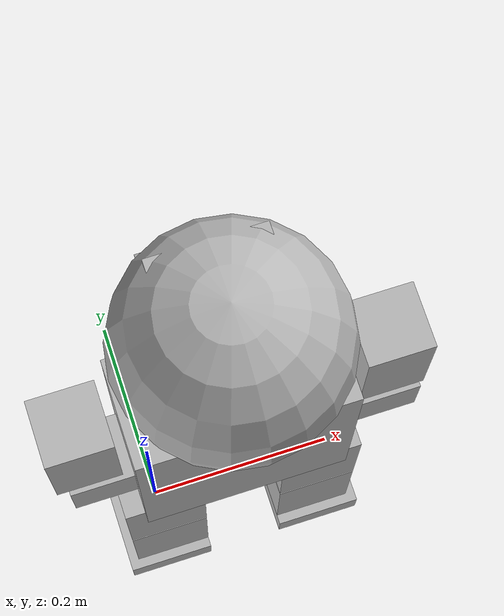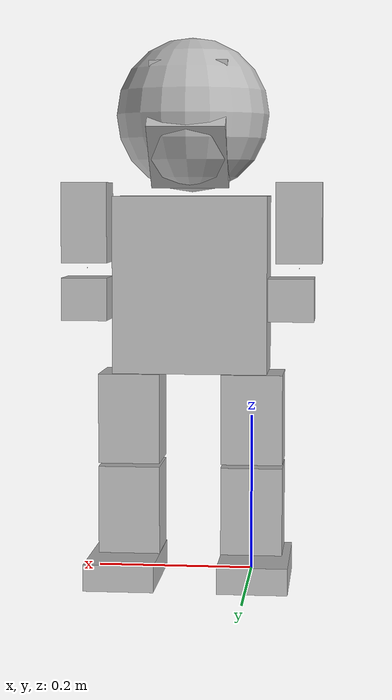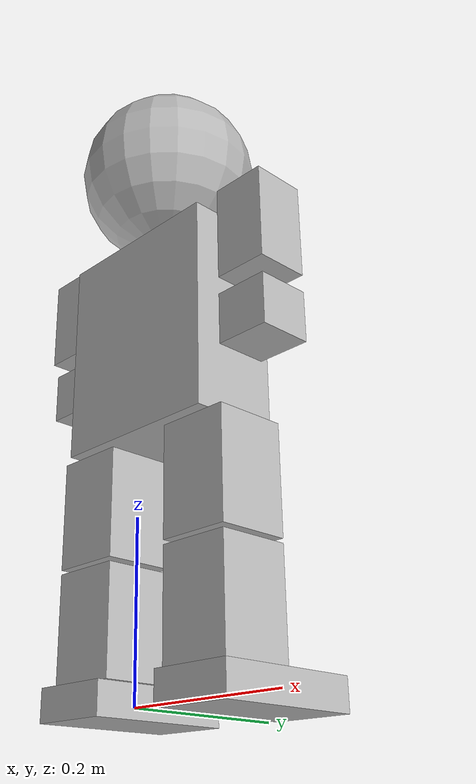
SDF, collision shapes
<?xml version='1.0'?>
<sdf version='1.3'>
    <model name="nao_robot">
        <!-- LEFT LEG -->
        <link name="left_foot">
            <pose>-0.005 0 0 0 0 0</pose>
            <inertial>
                <mass>1.6184</mass>
            </inertial>

            <collision name="collision">
                <geometry>
                    <box>
                        <size>.09 .16 .03419</size>
                    </box>
                </geometry>
            </collision>
            <visual name="visual">
                <pose>0 0 0 -1.57 0 0</pose>
                <geometry>
                    <mesh>
                        <uri>model://nao_robot/meshes/pieizquierdo.dae</uri>
                        <scale>0.09 0.09 0.075</scale>
                    </mesh>
                </geometry>
            </visual>
        </link>

        <link name="leftankle_pitch">
            <pose>-0.005 0 0.03 0 0 0</pose>
            <inertial>
                <mass>0.01</mass>
            </inertial>

            <collision name="collision">
                <geometry>
                    <box>
                        <size>.001 .001 .001</size>
                    </box>
                </geometry>
            </collision>

            <visual name="visual">
                <geometry>
                    <box>
                        <size>.001 .001 .001</size>
                    </box>
                </geometry>
            </visual>

        </link>

        <link name="left_shin">
            <pose>0 -0.03 .075 0 0 0</pose>
            <inertial>
                <mass>0.29142</mass>
            </inertial>

            <collision name="collision">
                <geometry>
                    <box>
                        <size>.08 .08 .1139</size>
                    </box>
                </geometry>
            </collision>
            <visual name="visual">
                <pose>0 0 0 -1.57 0 0</pose>
                <geometry>
                    <mesh>
                        <uri>model://nao_robot/meshes/espinillaizquierda.dae</uri>
                        <scale>0.075 0.075 0.075</scale>
                    </mesh>
                </geometry>
            </visual>
        </link>

        <link name="left_thigh">
            <pose>0 -0.03 .195 0 0 0</pose>
            <inertial>
                <mass>0.38968</mass>
            </inertial>

            <collision name="collision">
                <geometry>
                    <box>
                        <size>.08 .08 .117</size>
                    </box>
                </geometry>
            </collision>
            <visual name="visual">
                <pose>0 0 0 -1.57 0 0</pose>
                <geometry>
                    <mesh>
                        <uri>model://nao_robot/meshes/musloizquierdo.dae</uri>
                        <scale>0.075 0.075 0.075</scale>
                    </mesh>
                </geometry>
            </visual>
        </link>

        <!-- RIGHT LEG -->
        <link name="right_foot">
            <pose>0.165 0 0 0 0 0</pose>
            <inertial>
                <mass>1.6171</mass>
            </inertial>

            <collision name="collision">
                <geometry>
                    <box>
                        <size>.09 .16 .03419</size>
                    </box>
                </geometry>
            </collision>
            <visual name="visual">
                <pose>0 0 0 -1.57 0 0</pose>
                <geometry>
                    <mesh>
                        <uri>model://nao_robot/meshes/piederecho.dae</uri>
                        <scale>0.09 0.09 0.075</scale>
                    </mesh>
                </geometry>
            </visual>
        </link>

        <link name="rightankle_pitch">
            <pose>0.165 0 0.03 0 0 0</pose>
            <inertial>
                <mass>0.01</mass>
            </inertial>

            <collision name="collision">
                <geometry>
                    <box>
                        <size>.001 .001 .001</size>
                    </box>
                </geometry>
            </collision>

            <visual name="visual">
                <geometry>
                    <box>
                        <size>.001 .001 .001</size>
                    </box>
                </geometry>
            </visual>

        </link>

        <link name="right_shin">
            <pose>0.16 -0.03 .075 0 0 0</pose>
            <inertial>
                <mass>0.29163</mass>
            </inertial>

            <collision name="collision">
                <geometry>
                    <box>
                        <size>.08 .08 .1139</size>
                    </box>
                </geometry>
            </collision>
            <visual name="visual">
                <pose>0 0 0 -1.57 0 0</pose>
                <geometry>
                    <mesh>
                        <uri>model://nao_robot/meshes/espinilladerecha.dae</uri>
                        <scale>0.075 0.075 0.075</scale>
                    </mesh>
                </geometry>
            </visual>
        </link>

        <link name="righthip_yawpitch">
            <pose>0.16 -0.03 0.27 0 0 0</pose>
            <inertial>
                <mass>0.01</mass>
            </inertial>

            <collision name="collision">
                <geometry>
                    <box>
                        <size>.001 .001 .001</size>
                    </box>
                </geometry>
            </collision>

            <visual name="visual">
                <geometry>
                    <box>
                        <size>.001 .001 .001</size>
                    </box>
                </geometry>
            </visual>

        </link>

        <link name="righthip_roll">
            <pose>0.16 -0.03 0.27 0 0 0</pose>
            <inertial>
                <mass>0.01</mass>
            </inertial>

            <collision name="collision">
                <geometry>
                    <box>
                        <size>.001 .001 .001</size>
                    </box>
                </geometry>
            </collision>

            <visual name="visual">
                <geometry>
                    <box>
                        <size>.001 .001 .001</size>
                    </box>
                </geometry>
            </visual>

        </link>

        <link name="right_thigh">
            <pose>0.16 -0.03 .195 0 0 0</pose>
            <inertial>
                <mass>0.38976</mass>
            </inertial>

            <collision name="collision">
                <geometry>
                    <box>
                        <size>.08 .08 .117</size>
                    </box>
                </geometry>
            </collision>
            <visual name="visual">
                <pose>0 0 0 -1.57 0 0</pose>
                <geometry>
                    <mesh>
                        <uri>model://nao_robot/meshes/musloderecho.dae</uri>
                        <scale>0.075 0.075 0.075</scale>
                    </mesh>
                </geometry>
            </visual>
        </link>

        <link name="body_hexa">
            <pose>0.08 -0.03 0.37 0 0 0</pose>
            <inertial>
                <mass>1.04956</mass>
            </inertial>

            <collision name="collision">
                <geometry>
                    <box>
                        <size>.2 .1 .2295</size>
                    </box>
                </geometry>
            </collision>
            <visual name="visual">
                <pose>0 0 0 0 0 3.14</pose>
                <geometry>
                    <mesh>
                        <uri>model://nao_robot/meshes/cuerpo.dae</uri>
                        <scale>0.14 0.14 0.14</scale>
                    </mesh>
                </geometry>
            </visual>
        </link>

        <!-- LEFT ARM -->
        <link name="leftshoulder_pitch">
            <pose>-0.06 -0.03 0.49 0 0 0</pose>
            <inertial>
                <mass>0.01</mass>
            </inertial>

            <collision name="collision">
                <geometry>
                    <box>
                        <size>.001 .001 .001</size>
                    </box>
                </geometry>
            </collision>

            <visual name="visual">
                <geometry>
                    <box>
                        <size>.001 .001 .001</size>
                    </box>
                </geometry>
            </visual>

        </link>

        <link name="left_upper_arm">
            <pose>-0.06 -0.03 0.45 0 0 0</pose>
            <inertial>
                <mass>0.15777</mass>
            </inertial>

            <collision name="collision">
                <geometry>
                    <box>
                        <size>.06 .06 .105</size>
                    </box>
                </geometry>
            </collision>
            <visual name="visual">
                <pose>0 0 0 0 3.14 3.14</pose>
                <geometry>
                    <mesh>
                        <uri>model://nao_robot/meshes/bicepsizquierdo.dae</uri>
                        <scale>0.11 0.11 0.11</scale>
                    </mesh>
                </geometry>
            </visual>
        </link>

        <link name="leftelbow_yaw">
            <pose>-0.06 -0.03 0.39 0 0 0</pose>
            <inertial>
                <mass>0.01</mass>
            </inertial>

            <collision name="collision">
                <geometry>
                    <box>
                        <size>.001 .001 .001</size>
                    </box>
                </geometry>
            </collision>

            <visual name="visual">
                <geometry>
                    <box>
                        <size>.001 .001 .001</size>
                    </box>
                </geometry>
            </visual>

        </link>

        <link name="left_lower_arm">
            <pose>-0.05 -0.03 0.35 0 0 0</pose>
            <inertial>
                <mass>0.07761</mass>
            </inertial>

            <collision name="collision">
                <geometry>
                    <box>
                        <size>.06 .06 .05595</size>
                    </box>
                </geometry>
            </collision>
            <visual name="visual">
                <pose>0 0 0 0 3.14 -1.57</pose>
                <geometry>
                    <mesh>
                        <uri>model://nao_robot/meshes/antebrazoizquierdo.dae</uri>
                        <scale>0.11 0.11 0.11</scale>
                    </mesh>
                </geometry>
            </visual>
        </link>
        <!-- RIGHT ARM -->
        <link name="rightshoulder_pitch">
            <pose>0.2 -0.03 0.49 0 0 0</pose>
            <inertial>
                <mass>0.01</mass>
            </inertial>

            <collision name="collision">
                <geometry>
                    <box>
                        <size>.001 .001 .001</size>
                    </box>
                </geometry>
            </collision>

            <visual name="visual">
                <geometry>
                    <box>
                        <size>.001 .001 .001</size>
                    </box>
                </geometry>
            </visual>

        </link>

        <link name="right_upper_arm">
            <pose>0.22 -0.03 0.45 0 0 0</pose>
            <inertial>
                <mass>0.15794</mass>
            </inertial>

            <collision name="collision">
                <geometry>
                    <box>
                        <size>.06 .06 .105</size>
                    </box>
                </geometry>
            </collision>
            <visual name="visual">
                <pose>0 0 0 0 3.14 0</pose>
                <geometry>
                    <mesh>
                        <uri>model://nao_robot/meshes/bicepsderecho.dae</uri>
                        <scale>0.11 0.11 0.11</scale>
                    </mesh>
                </geometry>
            </visual>
        </link>

        <link name="rightelbow_yaw">
            <pose>0.22 -0.03 0.39 0 0 0</pose>
            <inertial>
                <mass>0.01</mass>
            </inertial>

            <collision name="collision">
                <geometry>
                    <box>
                        <size>.001 .001 .001</size>
                    </box>
                </geometry>
            </collision>

            <visual name="visual">
                <geometry>
                    <box>
                        <size>.001 .001 .001</size>
                    </box>
                </geometry>
            </visual>
        </link>

        <link name="right_lower_arm">
            <pose>0.22 -0.03 0.35 0 0 0</pose>
            <inertial>
                <mass>0.07778</mass>
            </inertial>

            <collision name="collision">
                <geometry>
                    <box>
                        <size>.06 .06 .05595</size>
                    </box>
                </geometry>
            </collision>
            <visual name="visual">
                <pose>0 0 0 0 3.14 1.57</pose>
                <geometry>
                    <mesh>
                        <uri>model://nao_robot/meshes/antebrazoderecho.dae</uri>
                        <scale>0.11 0.11 0.11</scale>
                    </mesh>
                </geometry>
            </visual>
        </link>
        <!-- HEAD -->
        <link name="head_pan">
            <pose>0.08 -0.03 0.51 0 0 0</pose>
            <inertial>
                <mass>0.01</mass>
            </inertial>

            <collision name="collision">
                <geometry>
                    <box>
                        <size>.001 .001 .001</size>
                    </box>
                </geometry>
            </collision>

            <visual name="visual">
                <geometry>
                    <box>
                        <size>.001 .001 .001</size>
                    </box>
                </geometry>
            </visual>
        </link>

        <link name="head_tilt">
            <pose>0.08 -0.03 0.59 0 0 0</pose>
            <inertial>
                <mass>0.60533</mass>
            </inertial>

            <collision name="collision">
                <geometry>
                    <sphere>
                        <radius>.1</radius>
                    </sphere>
                </geometry>
            </collision>
            <visual name="visual">
                <pose>0 0 -0.02 0 0 3.14</pose>
                <geometry>
                    <mesh>
                        <uri>model://nao_robot/meshes/cabeza.dae</uri>
                        <scale>0.12 0.12 0.12</scale>
                    </mesh>
                </geometry>
            </visual>
        </link>

        <link name="camera_head_top">
            <pose>0.08 -0.0179 0.608 1.57 -0.0209 -1.57</pose>
            <inertial>
                <mass>0.05</mass>
            </inertial>

            <sensor name='cam_sensor_top' type='camera'>
        	    <pose>0 0 0 1.57 0 3.14</pose>
                <update_rate>20</update_rate>
                <camera>
                    <horizontal_fov>1.57</horizontal_fov>
                    <image>
              	        <width>640</width>
              	        <height>480</height>
              	        <format>R8G8B8</format>
                    </image>
                    <clip>
		                <near>0.5</near>
		                <far>5</far>
                    </clip>
                </camera>
                <plugin name='camera_dump' filename='libcamera_nao.so'/>
            </sensor>

	 	    <visual name="visual">
                <geometry>
                    <mesh>
                        <uri>model://pioneer2dxJde/meshes/sonyvid30/sonyvid30_top.dae</uri>
                        <scale>2 2 1.3</scale>
                    </mesh>
                </geometry>
            </visual>

            <collision name="collision">
                <geometry>
                    <box>
                        <size>0.1 0.1 0.1</size>
                    </box>
                </geometry>
                <surface>
                    <friction>
                        <ode>
                            <mu>100000.0</mu>
                            <mu2>100000.0</mu2>
                            <slip1>0.0</slip1>
                            <slip2>0.0</slip2>
                        </ode>
                    </friction>
                </surface>
            </collision>
        </link>

        <link name="camera_head_bottom">
            <pose>0.08 -0.001 0.5653 1.57 -0.6929 -1.57</pose>
            <inertial>
                <mass>0.05</mass>
            </inertial>

            <sensor name='cam_sensor_bottom' type='camera'>
        	    <pose>0 0 0 1.57 0 3.14</pose>
                <update_rate>20</update_rate>
                <camera>
                    <horizontal_fov>1.57</horizontal_fov>
                    <image>
              	        <width>640</width>
              	        <height>480</height>
              	        <format>R8G8B8</format>
                    </image>
                    <clip>
		                <near>0.5</near>
		                <far>5</far>
                    </clip>
                </camera>
                <plugin name='camera_dump' filename='libcamera_nao.so'/>
            </sensor>

	 	    <visual name="visual">
                <geometry>
                    <mesh>
                        <uri>model://pioneer2dxJde/meshes/sonyvid30/sonyvid30_top.dae</uri>
                        <scale>2 2 1.3</scale>
                    </mesh>
                </geometry>
            </visual>

            <collision name="collision">
                <geometry>
                    <box>
                        <size>0.1 0.1 0.1</size>
                    </box>
                </geometry>
                <surface>
                    <friction>
                        <ode>
                            <mu>100000.0</mu>
                            <mu2>100000.0</mu2>
                            <slip1>0.0</slip1>
                            <slip2>0.0</slip2>
                        </ode>
                    </friction>
                </surface>
            </collision>
        </link>

        <!-- JOINTS -->

        <!-- LEFT LEG -->
        <joint type="revolute" name="lankle_pitch">
            <pose>0 0 -0.041 0 0 0</pose>
            <child>left_shin</child>
            <parent>leftankle_pitch</parent>
            <axis>
                <limit>
                    <lower>-1.189516</lower>
                    <upper>0.922747</upper>
                </limit>
                <xyz>1 0 0</xyz>
            </axis>
        </joint>

        <joint type="revolute" name="lankle_roll">
            <pose>0 0 0 0 0 0</pose>
            <child>leftankle_pitch</child>
            <parent>left_foot</parent>
            <axis>
                <limit>
                    <lower>-0.397880</lower>
                    <upper>0.769001</upper>
                </limit>
                <xyz>0 1 0</xyz>
            </axis>
        </joint>

        <joint type="revolute" name="left_knee">
            <pose>0 0 -0.046 0 0 0</pose>
            <child>left_thigh</child>
            <parent>left_shin</parent>
            <axis>
                <limit>
                    <lower>-0.092346</lower>
                    <upper>2.112528</upper>
                </limit>
                <xyz>0 0 1</xyz>
            </axis>
        </joint>

        <!-- RIGHT LEG -->
        <joint type="revolute" name="rankle_pitch">
            <pose>0 0 -0.041 0 0 0</pose>
            <child>right_shin</child>
            <parent>rightankle_pitch</parent>
            <axis>
                <limit>
                    <lower>-1.186448</lower>
                    <upper>0.932056</upper>
                </limit>
                <xyz>1 0 0</xyz>
            </axis>
        </joint>

        <joint type="revolute" name="rankle_roll">
            <pose>0 0 0 0 0 0</pose>
            <child>rightankle_pitch</child>
            <parent>right_foot</parent>
            <axis>
                <limit>
                    <lower>-0.785875</lower>
                    <upper>0.388676</upper>
                </limit>
                <xyz>0 1 0</xyz>
            </axis>
        </joint>

        <joint type="revolute" name="right_knee">
            <pose>0 0 -0.046 0 0 0</pose>
            <child>right_thigh</child>
            <parent>right_shin</parent>
            <axis>
                <limit>
                    <lower>-0.103083</lower>
                    <upper>2.120198</upper>
                </limit>
                <xyz>0 0 1</xyz>
            </axis>
        </joint>

        <!-- HIPS -->
        <joint type="revolute" name="left_hip">
            <pose>-0.08 0 -0.1 0 0 0</pose>
            <child>body_hexa</child>
            <parent>left_shin</parent>
            <axis>
                <limit>
                    <lower>0</lower>
                    <upper>0</upper>
                </limit>
                <xyz>0 0 0</xyz>
            </axis>
        </joint>

        <joint type="revolute" name="rhip_yawpitch">
            <pose>0.08 0 -0.1 0 0 0</pose>
            <child>body_hexa</child>
            <parent>righthip_yawpitch</parent>
            <axis>
                <limit>
                    <lower>0</lower>
                    <upper>0</upper>
                </limit>
                <xyz>0 0 0</xyz>
            </axis>
        </joint>

        <joint type="revolute" name="rhip_roll">
            <pose>0 0 0 0 0 0</pose>
            <child>righthip_yawpitch</child>
            <parent>righthip_roll</parent>
            <axis>
                <limit>
                    <lower>0</lower>
                    <upper>0</upper>
                </limit>
                <xyz>0 0 0</xyz>
            </axis>
        </joint>

        <joint type="revolute" name="rhip_pitch">
            <pose>0 0 0 0 0 0</pose>
            <child>righthip_roll</child>
            <parent>right_thigh</parent>
            <axis>
                <limit>
                    <lower>0</lower>
                    <upper>0</upper>
                </limit>
                <xyz>0 0 0</xyz>
            </axis>
        </joint>

        <!-- BODY -->

        <!-- LEFT ARM -->
        <joint type="revolute" name="lshoulder_pitch">
            <pose>-0.14 0 0.12 0 0 0</pose>
            <child>body_hexa</child>
            <parent>leftshoulder_pitch</parent>
            <axis>
                <limit>
                    <lower>-3.6564734</lower>
                    <upper>0.5148734</upper>
                </limit>
                <xyz>1 0 0</xyz>
            </axis>
        </joint>

        <joint type="revolute" name="lshoulder_roll">
            <pose>0 0 0 0 0 0</pose>
            <child>leftshoulder_pitch</child>
            <parent>left_upper_arm</parent>
            <axis>
                <limit>
                    <lower>-1.3265</lower>
                    <upper>0.3142</upper>
                </limit>
                <xyz>0 1 0</xyz>
            </axis>
        </joint>

        <joint type="revolute" name="lelbow_yaw">
            <pose>0 0 -0.059 0 0 0</pose>
            <child>left_upper_arm</child>
            <parent>leftelbow_yaw</parent>
            <axis>
                <limit>
                    <lower>-2.0857</lower>
                    <upper>2.0857</upper>
                </limit>
                <xyz>0 0 1</xyz>
            </axis>
        </joint>

        <joint type="revolute" name="lelbow_roll">
            <pose>0 0 0 0 0 0</pose>
            <child>leftelbow_yaw</child>
            <parent>left_lower_arm</parent>
            <axis>
                <limit>
                    <lower>-0.0349</lower>
                    <upper>1.5446</upper>
                </limit>
                <xyz>0 1 0</xyz>
            </axis>
        </joint>

        <!-- RIGHT ARM -->
        <joint type="revolute" name="rshoulder_pitch">
            <pose>0.12 0 0.12 0 0 0</pose>
            <child>body_hexa</child>
            <parent>rightshoulder_pitch</parent>
            <axis>
                <limit>
                    <lower>-3.6564734</lower>
                    <upper>0.5148734</upper>
                </limit>
                <xyz>1 0 0</xyz>
            </axis>
        </joint>

        <joint type="revolute" name="rshoulder_roll">
            <pose>0 0 0 0 0 0</pose>
            <child>rightshoulder_pitch</child>
            <parent>right_upper_arm</parent>
            <axis>
                <limit>
                    <lower>-0.3142</lower>
                    <upper>1.3265</upper>
                </limit>
                <xyz>0 1 0</xyz>
            </axis>
        </joint>

        <joint type="revolute" name="relbow_yaw">
            <pose>0 0 -0.059 0 0 0</pose>
            <child>right_upper_arm</child>
            <parent>rightelbow_yaw</parent>
            <axis>
                <limit>
                    <lower>-2.0857</lower>
                    <upper>2.0857</upper>
                </limit>
                <xyz>0 0 1</xyz>
            </axis>
        </joint>

        <joint type="revolute" name="relbow_roll">
            <pose>0 0 0.0 0 0 0</pose>
            <child>rightelbow_yaw</child>
            <parent>right_lower_arm</parent>
            <axis>
                <limit>
                    <lower>-1.5446</lower>
                    <upper>0.0349</upper>
                </limit>
                <xyz>0 1 0</xyz>
            </axis>
        </joint>
        <!-- NECK -->
        <joint type="revolute" name="neck_pan">
            <pose>0 0 0.14 0 0 0</pose>
            <child>body_hexa</child>
            <parent>head_pan</parent>
            <axis>
                <limit>
                    <lower>-2.0857</lower>
                    <upper>2.0857</upper>
                </limit>
                <xyz>0 0 1</xyz>
            </axis>
        </joint>

        <joint type="revolute" name="neck_tilt">
            <pose>0 0 0 0 0 0</pose>
            <child>head_pan</child>
            <parent>head_tilt</parent>
            <axis>
                <limit>
                    <lower>-0.6720</lower>
                    <upper>0.5149</upper>
                </limit>
                <xyz>1 0 0</xyz>
            </axis>
        </joint>

        <joint type="revolute" name="camera_top">
            <pose>0 0 0 0 0 0</pose>
            <child>head_tilt</child>
            <parent>camera_head_top</parent>
            <axis>
                <limit>
                    <lower>0</lower>
                    <upper>0</upper>
                </limit>
                <xyz>0 0 0</xyz>
            </axis>
        </joint>

        <joint type="revolute" name="camera_bottom">
            <pose>0 0 0 0 0 0</pose>
            <child>head_tilt</child>
            <parent>camera_head_bottom</parent>
            <axis>
                <limit>
                    <lower>0</lower>
                    <upper>0</upper>
                </limit>
                <xyz>0 0 0</xyz>
            </axis>
        </joint>

        <!-- PLUGINS -->
        <plugin filename="libposeneck.so" name="poseneck">
            <joint_poseneck_pan>neck_pan</joint_poseneck_pan>
            <joint_poseneck_tilt>neck_tilt</joint_poseneck_tilt>
            <torque>5</torque>
        </plugin>
        <plugin filename="libposerightshoulder.so" name="poserightshoulder">
            <joint_poserightshoulder_pitch>rshoulder_pitch</joint_poserightshoulder_pitch>
            <joint_poserightshoulder_roll>rshoulder_roll</joint_poserightshoulder_roll>
            <torque>5</torque>
        </plugin>

        <plugin filename="libposeleftshoulder.so" name="poseleftshoulder">
            <joint_poseleftshoulder_tilt>lshoulder_pitch</joint_poseleftshoulder_tilt>
            <joint_poseleftshoulder_roll>lshoulder_roll</joint_poseleftshoulder_roll>
            <torque>5</torque>
        </plugin>

        <plugin filename="libposerightelbow.so" name="poseencodersrightelbow">
            <joint_poserightelbow_yaw>relbow_yaw</joint_poserightelbow_yaw>
            <joint_poserightelbow_roll>relbow_roll</joint_poserightelbow_roll>
            <torque>5</torque>
        </plugin>

        <plugin filename="libposeleftelbow.so" name="poseleftelbow">
            <joint_poseleftelbow_pan>lelbow_yaw</joint_poseleftelbow_pan>
            <joint_poseleftelbow_roll>lelbow_roll</joint_poseleftelbow_roll>
            <torque>5</torque>
        </plugin>
        <plugin filename="libposerightankle.so" name="poserightankle">
            <joint_poserightankle_pitch>rankle_pitch</joint_poserightankle_pitch>
            <joint_poserightankle_roll>rankle_roll</joint_poserightankle_roll>
            <torque>5</torque>
        </plugin>

        <plugin filename="libposeleftankle.so" name="poseleftankle">
            <joint_poseleftankle_pitch>lankle_pitch</joint_poseleftankle_pitch>
            <joint_poseleftankle_roll>lankle_roll</joint_poseleftankle_roll>
            <torque>5</torque>
        </plugin>

        <plugin filename="libposerightknee.so" name="poserightknee">
            <joint_poserightknee_pitch>right_knee</joint_poserightknee_pitch>
            <torque>5</torque>
        </plugin>

        <plugin filename="libposeleftknee.so" name="poseleftknee">
            <joint_poseleftknee_pitch>left_knee</joint_poseleftknee_pitch>
            <torque>5</torque>
        </plugin>

    </model>
</sdf>
